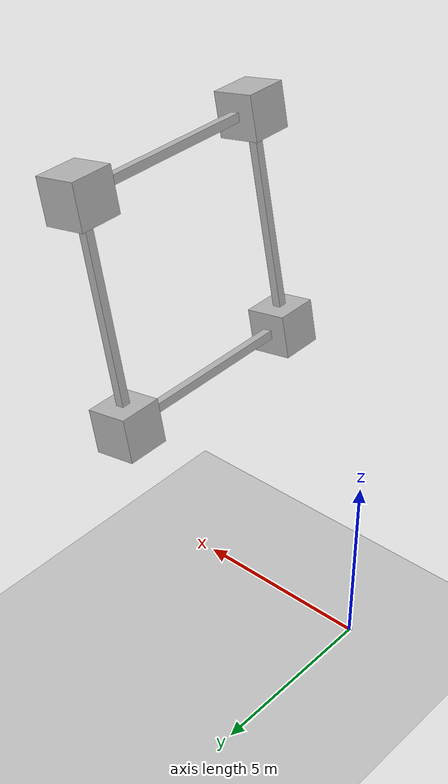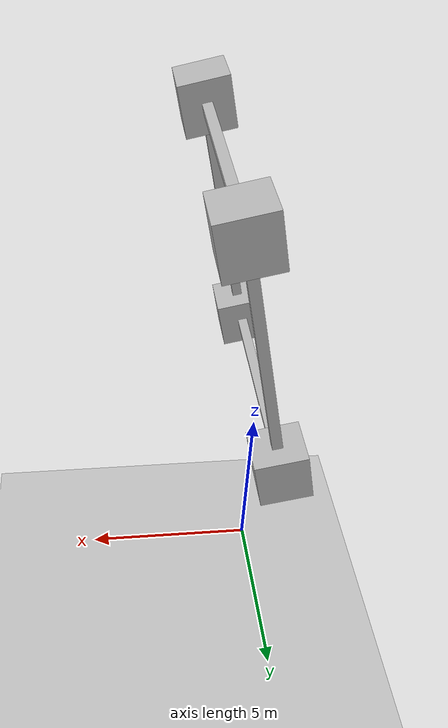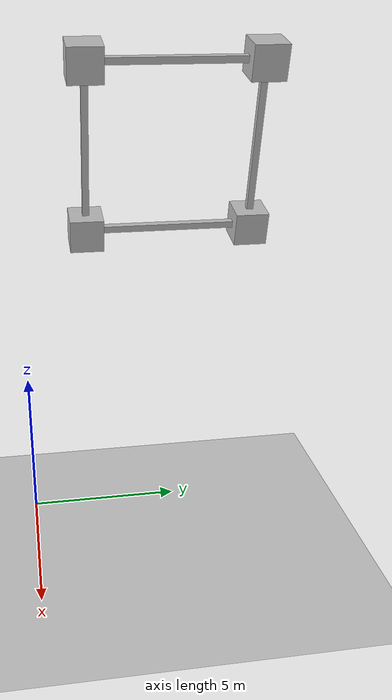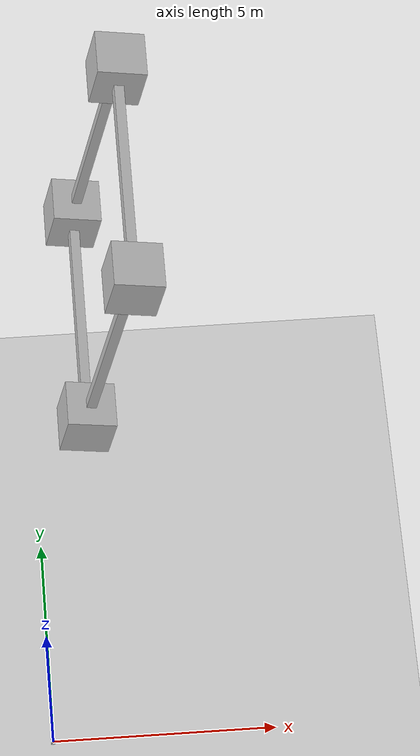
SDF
<?xml version="1.0" ?>
<sdf version="1.4">
  <world name="default">

    <!-- A global light source -->
    <include>
      <uri>model://sun</uri>
    </include>

    <!-- A ground plane -->
    <include>
      <uri>model://ground_plane</uri>
    </include>

    <model name ='hog'>
      <plugin name='hand_of_god' filename="libgazebo_ros_hand_of_god.so">
        <frameId>hydra_right_grab</frameId>
        <linkName>hog</linkName>
      </plugin>

      <link name ='hog'>
        <self_collide>1</self_collide>
        <pose>0 0 0 0 0 0</pose>
        <collision name ='collision'>
          <geometry>
            <box><size>0.1 0.1 0.1</size></box>
          </geometry>
        </collision>
        <visual name ='visual'>
          <geometry>
            <box><size>0.1 0.1 0.1</size></box>
          </geometry>
        </visual>
      </link>
    </model>

    <model name ='box'>
      <pose>1 2 10 0 0.2 0</pose>

      <link name ='node1'>
        <self_collide>1</self_collide>
        <pose>0 0 .5 0 0 0</pose>
        <collision name ='collision'>
          <geometry>
            <box><size>1 1 1</size></box>
          </geometry>
        </collision>
        <visual name ='visual'>
          <geometry>
            <box><size>1 1 1</size></box>
          </geometry>
        </visual>
      </link>

      <joint type="revolute" name='n1l12'>
        <pose>0 -2 0 0 0 0</pose>
        <parent>node1</parent>
        <child>link12</child>
        <axis>
          <xyz>1 0 0</xyz>
          <limit><lower>0</lower><upper>0</upper></limit>
        </axis>
      </joint>

      <link name ='link12'>
        <self_collide>1</self_collide>
        <pose>0 2.5 .5 0 0 0</pose>
        <collision name ='collision'>
          <geometry>
            <box><size>0.2 4 0.2</size></box>
          </geometry>
        </collision>
        <visual name ='visual'>
          <geometry>
            <box><size>0.2 4 0.2</size></box>
          </geometry>
        </visual>
      </link>

      <joint type="revolute" name='l12n2'>
        <pose>0 -0.5 0 0 0 0</pose>
        <parent>link12</parent>
        <child>node2</child>
        <axis>
          <xyz>1 0 0</xyz>
          <limit><lower>0</lower><upper>0</upper></limit>
        </axis>
        <physics>
          <ode>
            <cfm_damping>1</cfm_damping>
            <limit>
              <cfm>1.0</cfm>
            </limit>
          </ode>
        </physics>
      </joint>

      <link name ='node2'>
        <self_collide>1</self_collide>
        <pose>0 5 0.5 0 0 0</pose>
        <collision name ='collision'>
          <geometry>
            <box><size>1 1 1</size></box>
          </geometry>
        </collision>
        <visual name ='visual'>
          <geometry>
            <box><size>1 1 1</size></box>
          </geometry>
        </visual>
      </link>

      <joint type="revolute" name='n2l23'>
        <pose>0 -2 0 0 0 0</pose>
        <parent>node2</parent>
        <child>link23</child>
        <axis>
          <xyz>1 0 0</xyz>
          <limit><lower>0</lower><upper>0</upper></limit>
        </axis>
      </joint>

      <link name ='link23'>
        <self_collide>1</self_collide>
        <pose>0 5 3 1.5708 0 0</pose>
        <collision name ='collision'>
          <geometry>
            <box><size>0.2 4 0.2</size></box>
          </geometry>
        </collision>
        <visual name ='visual'>
          <geometry>
            <box><size>0.2 4 0.2</size></box>
          </geometry>
        </visual>
      </link>

      <joint type="revolute" name='l23n3'>
        <pose>0 0 -0.5 0 0 0</pose>
        <parent>link23</parent>
        <child>node3</child>
        <axis>
          <xyz>1 0 0</xyz>
          <limit><lower>0</lower><upper>0</upper></limit>
        </axis>
      </joint>

      <link name ='node3'>
        <self_collide>1</self_collide>
        <pose>0 5 5.5 0 0 0</pose>
        <collision name ='collision'>
          <geometry>
            <box><size>1 1 1</size></box>
          </geometry>
        </collision>
        <visual name ='visual'>
          <geometry>
            <box><size>1 1 1</size></box>
          </geometry>
        </visual>
      </link>

      <joint type="revolute" name='n3l34'>
        <pose>0 2 0 0 0 0</pose>
        <parent>node3</parent>
        <child>link34</child>
        <axis>
          <xyz>1 0 0</xyz>
          <limit><lower>0</lower><upper>0</upper></limit>
        </axis>
      </joint>

      <link name ='link34'>
        <self_collide>1</self_collide>
        <pose>0 2.5 5.5 0 0 0</pose>
        <collision name ='collision'>
          <geometry>
            <box><size>0.2 4 0.2</size></box>
          </geometry>
        </collision>
        <visual name ='visual'>
          <geometry>
            <box><size>0.2 4 0.2</size></box>
          </geometry>
        </visual>
      </link>

      <joint type="revolute" name='l34n4'>
        <pose>0 0.5 0 0 0 0</pose>
        <parent>link34</parent>
        <child>node4</child>
        <axis>
          <xyz>1 0 0</xyz>
          <limit><lower>0</lower><upper>0</upper></limit>
        </axis>
      </joint>

      <link name ='node4'>
        <self_collide>1</self_collide>
        <pose>0 0 5.5 0 0 0</pose>
        <collision name ='collision'>
          <geometry>
            <box><size>1 1 1</size></box>
          </geometry>
        </collision>
        <visual name ='visual'>
          <geometry>
            <box><size>1 1 1</size></box>
          </geometry>
        </visual>
      </link>

      <joint type="revolute" name='n4l41'>
        <pose>0 -0.5 0 0 0 0</pose>
        <parent>node4</parent>
        <child>link41</child>
        <axis>
          <xyz>1 0 0</xyz>
          <limit><lower>0</lower><upper>0</upper></limit>
        </axis>
      </joint>

      <link name ='link41'>
        <self_collide>1</self_collide>
        <pose>0 0 3 1.5708 0 0</pose>
        <collision name ='collision'>
          <geometry>
            <box><size>0.2 4 0.2</size></box>
          </geometry>
        </collision>
        <visual name ='visual'>
          <geometry>
            <box><size>0.2 4 0.2</size></box>
          </geometry>
        </visual>
      </link>

      <joint type="revolute" name='l41n1'>
        <pose>0 -0.5 0 0 0 0</pose>
        <parent>link41</parent>
        <child>node1</child>
        <axis>
          <xyz>1 0 0</xyz>
          <limit><lower>0</lower><upper>0</upper></limit>
        </axis>
      </joint>
    </model>

  </world>
</sdf>
